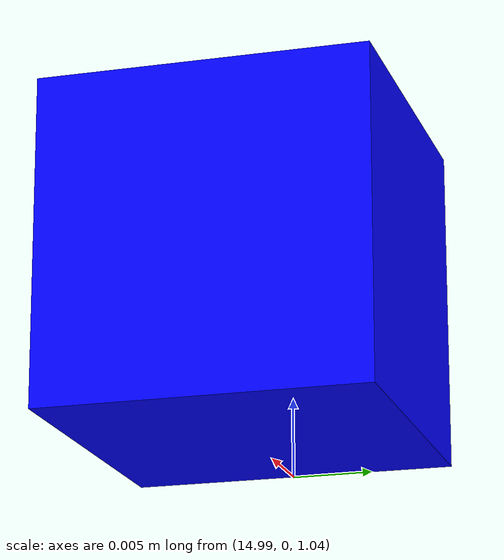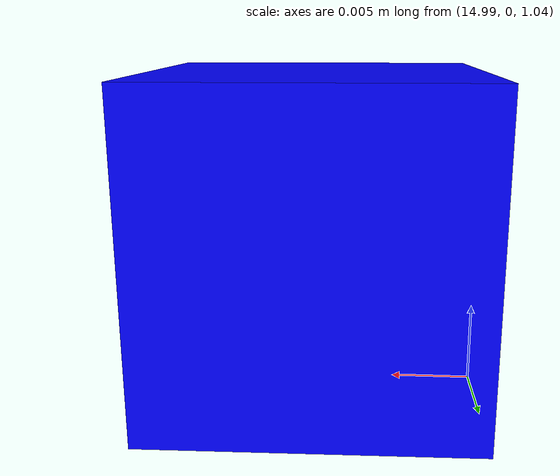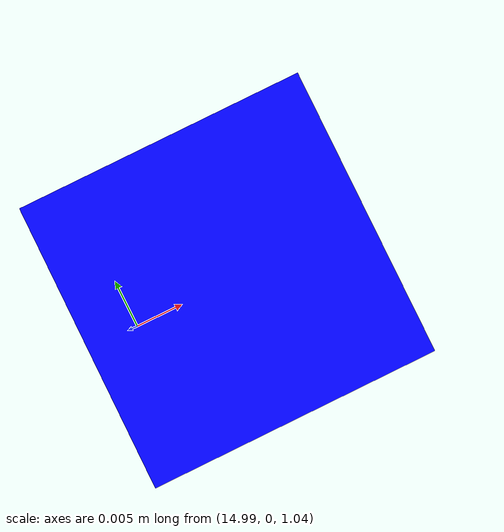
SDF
<?xml version='1.0'?>
<sdf version='1.7'>
  <model name='target'>
      <pose>15.0 0.0 1.05 0 0 0</pose>
      <link name='link_0'>
        <inertial>
          <!-- 1. 修正惯性张量：10g, 2cm方块的惯性矩应该是 6.6e-7 -->
          <mass>0.01</mass>
          <inertia>
            <ixx>6.6e-07</ixx>
            <ixy>0</ixy>
            <ixz>0</ixz>
            <iyy>6.6e-07</iyy>
            <iyz>0</iyz>
            <izz>6.6e-07</izz>
          </inertia>
        </inertial>

        <visual name='visual'>
          <geometry>
            <box>
              <size>0.02 0.02 0.02</size>
            </box>
          </geometry>
          <material>
            <ambient>0 0 1 1</ambient>
            <diffuse>0 0 1 1</diffuse>
          </material>
        </visual>
      </link>

      <!-- 6. 开启自动休眠：如果不动时让它进入睡眠状态 -->
      <allow_auto_disable>1</allow_auto_disable>
      <static>0</static>
  </model>
</sdf>
